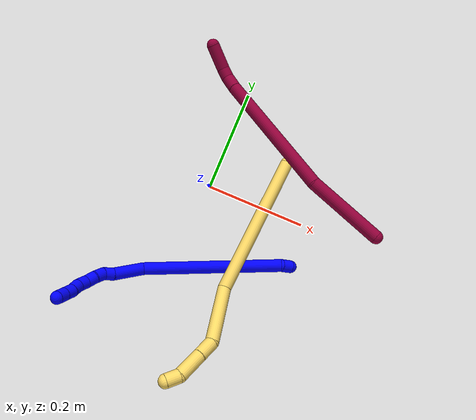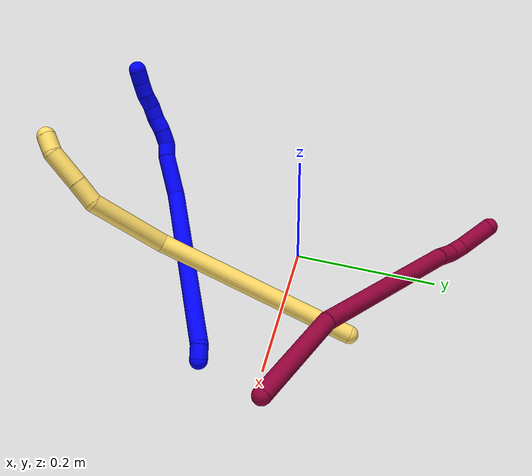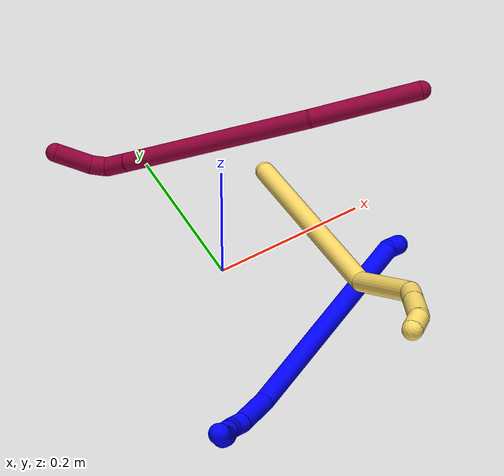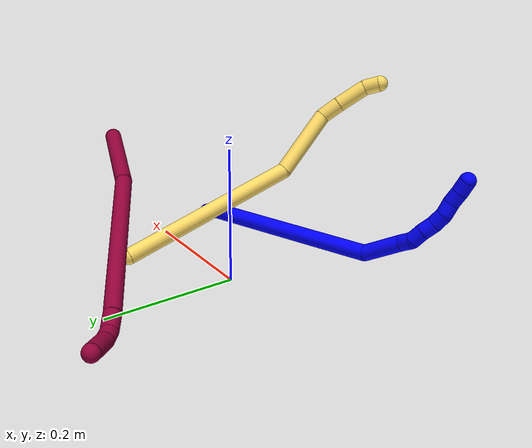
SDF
<sdf version="1.7">
 <world name="default">
  <model name="photoneo_s_sensor">
   <static>1</static>
   <pose>0 0 2 1.57079 1.57079 3.14159</pose>
   <link name="link">
    <inertial><mass>0.1</mass></inertial>
    <sensor name="sensor" type="depth">
     <update_rate>30</update_rate>
     <camera>
      <horizontal_fov>1.22</horizontal_fov>
      <image><width>1920</width><height>1200</height><format>B8G8R8</format></image>
      <clip><near>0.1</near><far>2</far></clip>
      <depth_camera><output>points</output></depth_camera>
     </camera>
     <plugin name="camera_plugin" filename="libgazebo_ros_depth_camera.so">
      <baseline>0.2</baseline>
      <alwaysOn>1</alwaysOn>
      <updateRate>0.0</updateRate>
      <cameraName>camera_ir</cameraName>
      <imageTopicName>/camera/color/image_raw</imageTopicName>
      <cameraInfoTopicName>/camera/color/camera_info</cameraInfoTopicName>
      <depthImageTopicName>/camera/depth/image_raw</depthImageTopicName>
      <depthImageCameraInfoTopicName>/camera/depth/camera_info</depthImageCameraInfoTopicName>
      <pointCloudTopicName>/camera/depth/points</pointCloudTopicName>
      <frameName>fr_optical</frameName>
      <pointCloudCutoff>0.1</pointCloudCutoff>
      <pointCloudCutoffMax>2.0</pointCloudCutoffMax>
      <distortionK1>0</distortionK1>
      <distortionK2>0</distortionK2>
      <distortionK3>0</distortionK3>
      <distortionT1>0</distortionT1>
      <distortionT2>0</distortionT2>
      <CxPrime>0</CxPrime>
      <Cx>0</Cx>
      <Cy>0</Cy>
      <focalLength>0</focalLength>
      <hackBaseline>0</hackBaseline>
     </plugin>
    </sensor>
   </link>
  </model>
  <model name="bin">
   <static>1</static>
   <link name="bottom">
    <collision name="collision-bottom">
     <pose>0 0 -0.01 0 -0 0</pose>
     <geometry><box><size>0.8 0.6 0.02</size></box></geometry>
     <surface>
      <friction><ode><mu>100</mu><mu2>100</mu2></ode></friction>
      <contact><collide_bitmask>65535</collide_bitmask></contact>
     </surface>
    </collision>
   </link>
   <link name="west_wall">
    <collision name="collision-west_wall">
     <pose>-0.41 0 0.1 0 -0 0</pose>
     <geometry><box><size>0.02 0.6 0.2</size></box></geometry>
     <surface>
      <friction><ode><mu>100</mu><mu2>100</mu2></ode></friction>
      <contact><collide_bitmask>65535</collide_bitmask></contact>
     </surface>
    </collision>
   </link>
   <link name="east_wall">
    <collision name="collision-east_wall">
     <pose>0.41 0 0.1 0 -0 0</pose>
     <geometry><box><size>0.02 0.6 0.2</size></box></geometry>
     <surface>
      <friction><ode><mu>100</mu><mu2>100</mu2></ode></friction>
      <contact><collide_bitmask>65535</collide_bitmask></contact>
     </surface>
    </collision>
   </link>
   <link name="south_wall">
    <collision name="collision-south_wall">
     <pose>0 -0.31 0.1 0 -0 0</pose>
     <geometry><box><size>0.8 0.02 0.2</size></box></geometry>
     <surface>
      <friction><ode><mu>100</mu><mu2>100</mu2></ode></friction>
      <contact><collide_bitmask>65535</collide_bitmask></contact>
     </surface>
    </collision>
   </link>
   <link name="north_wall">
    <collision name="collision-north_wall">
     <pose>0 0.31 0.1 0 -0 0</pose>
     <geometry><box><size>0.8 0.02 0.2</size></box></geometry>
     <surface>
      <friction><ode><mu>100</mu><mu2>100</mu2></ode></friction>
      <contact><collide_bitmask>65535</collide_bitmask></contact>
     </surface>
    </collision>
   </link>
  </model>
  <model name="1">
   <static>0</static>
   <link name="1">
    <collision name="collision-cylinder-e_1_1_4">
     <pose>-0.008423 -0.00355 -0.004879 2.51263 -0.949167 -2.01272</pose>
     <geometry><cylinder><radius>0.0125</radius><length>0.020721</length></cylinder></geometry>
     <surface>
      <friction><ode><mu>1.16</mu><mu2>1.16</mu2><slip1>0</slip1><slip2>0</slip2></ode></friction>
      <contact><ode><kp>1e+06</kp><kd>1</kd><max_vel>0</max_vel><min_depth>0.001</min_depth></ode></contact>
     </surface>
    </collision>
    <visual name="visual-cylinder-e_1_1_4">
     <pose>-0.008423 -0.00355 -0.004879 2.51263 -0.949167 -2.01272</pose>
     <geometry><cylinder><radius>0.0125</radius><length>0.020721</length></cylinder></geometry>
     <material><ambient>0 0 1 1</ambient></material>
    </visual>
    <collision name="collision-cylinder-e_2_4_5">
     <pose>-0.146684 -0.052605 -0.011258 1.60374 -1.23353 -1.26479</pose>
     <geometry><cylinder><radius>0.0125</radius><length>0.275181</length></cylinder></geometry>
     <surface>
      <friction><ode><mu>1.16</mu><mu2>1.16</mu2><slip1>0</slip1><slip2>0</slip2></ode></friction>
      <contact><ode><kp>1e+06</kp><kd>1</kd><max_vel>0</max_vel><min_depth>0.001</min_depth></ode></contact>
     </surface>
    </collision>
    <visual name="visual-cylinder-e_2_4_5">
     <pose>-0.146684 -0.052605 -0.011258 1.60374 -1.23353 -1.26479</pose>
     <geometry><cylinder><radius>0.0125</radius><length>0.275181</length></cylinder></geometry>
     <material><ambient>0 0 1 1</ambient></material>
    </visual>
    <collision name="collision-cylinder-e_3_5_6">
     <pose>-0.304304 -0.10016 -0.026616 2.99471 -1.10373 -2.90372</pose>
     <geometry><cylinder><radius>0.0125</radius><length>0.062227</length></cylinder></geometry>
     <surface>
      <friction><ode><mu>1.16</mu><mu2>1.16</mu2><slip1>0</slip1><slip2>0</slip2></ode></friction>
      <contact><ode><kp>1e+06</kp><kd>1</kd><max_vel>0</max_vel><min_depth>0.001</min_depth></ode></contact>
     </surface>
    </collision>
    <visual name="visual-cylinder-e_3_5_6">
     <pose>-0.304304 -0.10016 -0.026616 2.99471 -1.10373 -2.90372</pose>
     <geometry><cylinder><radius>0.0125</radius><length>0.062227</length></cylinder></geometry>
     <material><ambient>0 0 1 1</ambient></material>
    </visual>
    <collision name="collision-cylinder-e_4_6_7">
     <pose>-0.340377 -0.104793 -0.045662 2.67966 -0.96079 -2.29378</pose>
     <geometry><cylinder><radius>0.0125</radius><length>0.020231</length></cylinder></geometry>
     <surface>
      <friction><ode><mu>1.16</mu><mu2>1.16</mu2><slip1>0</slip1><slip2>0</slip2></ode></friction>
      <contact><ode><kp>1e+06</kp><kd>1</kd><max_vel>0</max_vel><min_depth>0.001</min_depth></ode></contact>
     </surface>
    </collision>
    <visual name="visual-cylinder-e_4_6_7">
     <pose>-0.340377 -0.104793 -0.045662 2.67966 -0.96079 -2.29378</pose>
     <geometry><cylinder><radius>0.0125</radius><length>0.020231</length></cylinder></geometry>
     <material><ambient>0 0 1 1</ambient></material>
    </visual>
    <collision name="collision-cylinder-e_5_7_8">
     <pose>-0.35622 -0.105274 -0.058106 -2.8596 -0.785236 2.48119</pose>
     <geometry><cylinder><radius>0.0125</radius><length>0.021365</length></cylinder></geometry>
     <surface>
      <friction><ode><mu>1.16</mu><mu2>1.16</mu2><slip1>0</slip1><slip2>0</slip2></ode></friction>
      <contact><ode><kp>1e+06</kp><kd>1</kd><max_vel>0</max_vel><min_depth>0.001</min_depth></ode></contact>
     </surface>
    </collision>
    <visual name="visual-cylinder-e_5_7_8">
     <pose>-0.35622 -0.105274 -0.058106 -2.8596 -0.785236 2.48119</pose>
     <geometry><cylinder><radius>0.0125</radius><length>0.021365</length></cylinder></geometry>
     <material><ambient>0 0 1 1</ambient></material>
    </visual>
    <collision name="collision-cylinder-e_6_8_9">
     <pose>-0.371842 -0.100452 -0.070789 -2.67704 -0.925858 2.25642</pose>
     <geometry><cylinder><radius>0.0125</radius><length>0.020195</length></cylinder></geometry>
     <surface>
      <friction><ode><mu>1.16</mu><mu2>1.16</mu2><slip1>0</slip1><slip2>0</slip2></ode></friction>
      <contact><ode><kp>1e+06</kp><kd>1</kd><max_vel>0</max_vel><min_depth>0.001</min_depth></ode></contact>
     </surface>
    </collision>
    <visual name="visual-cylinder-e_6_8_9">
     <pose>-0.371842 -0.100452 -0.070789 -2.67704 -0.925858 2.25642</pose>
     <geometry><cylinder><radius>0.0125</radius><length>0.020195</length></cylinder></geometry>
     <material><ambient>0 0 1 1</ambient></material>
    </visual>
    <collision name="collision-cylinder-e_7_9_10">
     <pose>-0.386521 -0.095423 -0.083394 -2.83039 -0.719735 2.35156</pose>
     <geometry><cylinder><radius>0.0125</radius><length>0.020054</length></cylinder></geometry>
     <surface>
      <friction><ode><mu>1.16</mu><mu2>1.16</mu2><slip1>0</slip1><slip2>0</slip2></ode></friction>
      <contact><ode><kp>1e+06</kp><kd>1</kd><max_vel>0</max_vel><min_depth>0.001</min_depth></ode></contact>
     </surface>
    </collision>
    <visual name="visual-cylinder-e_7_9_10">
     <pose>-0.386521 -0.095423 -0.083394 -2.83039 -0.719735 2.35156</pose>
     <geometry><cylinder><radius>0.0125</radius><length>0.020054</length></cylinder></geometry>
     <material><ambient>0 0 1 1</ambient></material>
    </visual>
    <collision name="collision-cylinder-e_8_10_11">
     <pose>-0.397847 -0.088626 -0.098177 -2.60836 -0.490594 1.48382</pose>
     <geometry><cylinder><radius>0.0125</radius><length>0.020022</length></cylinder></geometry>
     <surface>
      <friction><ode><mu>1.16</mu><mu2>1.16</mu2><slip1>0</slip1><slip2>0</slip2></ode></friction>
      <contact><ode><kp>1e+06</kp><kd>1</kd><max_vel>0</max_vel><min_depth>0.001</min_depth></ode></contact>
     </surface>
    </collision>
    <visual name="visual-cylinder-e_8_10_11">
     <pose>-0.397847 -0.088626 -0.098177 -2.60836 -0.490594 1.48382</pose>
     <geometry><cylinder><radius>0.0125</radius><length>0.020022</length></cylinder></geometry>
     <material><ambient>0 0 1 1</ambient></material>
    </visual>
    <collision name="collision-cylinder-e_9_11_12">
     <pose>-0.40827 -0.081605 -0.113594 -2.82816 -0.607254 2.20739</pose>
     <geometry><cylinder><radius>0.0125</radius><length>0.020001</length></cylinder></geometry>
     <surface>
      <friction><ode><mu>1.16</mu><mu2>1.16</mu2><slip1>0</slip1><slip2>0</slip2></ode></friction>
      <contact><ode><kp>1e+06</kp><kd>1</kd><max_vel>0</max_vel><min_depth>0.001</min_depth></ode></contact>
     </surface>
    </collision>
    <visual name="visual-cylinder-e_9_11_12">
     <pose>-0.40827 -0.081605 -0.113594 -2.82816 -0.607254 2.20739</pose>
     <geometry><cylinder><radius>0.0125</radius><length>0.020001</length></cylinder></geometry>
     <material><ambient>0 0 1 1</ambient></material>
    </visual>
    <collision name="collision-cylinder-e_10_12_2">
     <pose>-0.418989 -0.076476 -0.129661 -2.83677 -0.524984 2.10295</pose>
     <geometry><cylinder><radius>0.0125</radius><length>0.020002</length></cylinder></geometry>
     <surface>
      <friction><ode><mu>1.16</mu><mu2>1.16</mu2><slip1>0</slip1><slip2>0</slip2></ode></friction>
      <contact><ode><kp>1e+06</kp><kd>1</kd><max_vel>0</max_vel><min_depth>0.001</min_depth></ode></contact>
     </surface>
    </collision>
    <visual name="visual-cylinder-e_10_12_2">
     <pose>-0.418989 -0.076476 -0.129661 -2.83677 -0.524984 2.10295</pose>
     <geometry><cylinder><radius>0.0125</radius><length>0.020002</length></cylinder></geometry>
     <material><ambient>0 0 1 1</ambient></material>
    </visual>
    <collision name="collision-sphere-2">
     <pose>-0.424002 -0.073878 -0.137917 0 -0 0</pose>
     <geometry><sphere><radius>0.0125</radius></sphere></geometry>
     <surface>
      <friction><ode><mu>1.16</mu><mu2>1.16</mu2><slip1>0</slip1><slip2>0</slip2></ode></friction>
      <contact><ode><kp>1e+06</kp><kd>1</kd><max_vel>0</max_vel><min_depth>0.001</min_depth></ode></contact>
     </surface>
    </collision>
    <visual name="visual-sphere-2">
     <pose>-0.424002 -0.073878 -0.137917 0 -0 0</pose>
     <geometry><sphere><radius>0.0125</radius></sphere></geometry>
     <material><ambient>0 0 1 1</ambient></material>
    </visual>
    <collision name="collision-sphere-12">
     <pose>-0.413977 -0.079073 -0.121406 0 -0 0</pose>
     <geometry><sphere><radius>0.0125</radius></sphere></geometry>
     <surface>
      <friction><ode><mu>1.16</mu><mu2>1.16</mu2><slip1>0</slip1><slip2>0</slip2></ode></friction>
      <contact><ode><kp>1e+06</kp><kd>1</kd><max_vel>0</max_vel><min_depth>0.001</min_depth></ode></contact>
     </surface>
    </collision>
    <visual name="visual-sphere-12">
     <pose>-0.413977 -0.079073 -0.121406 0 -0 0</pose>
     <geometry><sphere><radius>0.0125</radius></sphere></geometry>
     <material><ambient>0 0 1 1</ambient></material>
    </visual>
    <collision name="collision-sphere-11">
     <pose>-0.402564 -0.084137 -0.105781 0 -0 0</pose>
     <geometry><sphere><radius>0.0125</radius></sphere></geometry>
     <surface>
      <friction><ode><mu>1.16</mu><mu2>1.16</mu2><slip1>0</slip1><slip2>0</slip2></ode></friction>
      <contact><ode><kp>1e+06</kp><kd>1</kd><max_vel>0</max_vel><min_depth>0.001</min_depth></ode></contact>
     </surface>
    </collision>
    <visual name="visual-sphere-11">
     <pose>-0.402564 -0.084137 -0.105781 0 -0 0</pose>
     <geometry><sphere><radius>0.0125</radius></sphere></geometry>
     <material><ambient>0 0 1 1</ambient></material>
    </visual>
    <collision name="collision-sphere-10">
     <pose>-0.393131 -0.093114 -0.090572 0 -0 0</pose>
     <geometry><sphere><radius>0.0125</radius></sphere></geometry>
     <surface>
      <friction><ode><mu>1.16</mu><mu2>1.16</mu2><slip1>0</slip1><slip2>0</slip2></ode></friction>
      <contact><ode><kp>1e+06</kp><kd>1</kd><max_vel>0</max_vel><min_depth>0.001</min_depth></ode></contact>
     </surface>
    </collision>
    <visual name="visual-sphere-10">
     <pose>-0.393131 -0.093114 -0.090572 0 -0 0</pose>
     <geometry><sphere><radius>0.0125</radius></sphere></geometry>
     <material><ambient>0 0 1 1</ambient></material>
    </visual>
    <collision name="collision-sphere-9">
     <pose>-0.379911 -0.097732 -0.076216 0 -0 0</pose>
     <geometry><sphere><radius>0.0125</radius></sphere></geometry>
     <surface>
      <friction><ode><mu>1.16</mu><mu2>1.16</mu2><slip1>0</slip1><slip2>0</slip2></ode></friction>
      <contact><ode><kp>1e+06</kp><kd>1</kd><max_vel>0</max_vel><min_depth>0.001</min_depth></ode></contact>
     </surface>
    </collision>
    <visual name="visual-sphere-9">
     <pose>-0.379911 -0.097732 -0.076216 0 -0 0</pose>
     <geometry><sphere><radius>0.0125</radius></sphere></geometry>
     <material><ambient>0 0 1 1</ambient></material>
    </visual>
    <collision name="collision-sphere-4">
     <pose>-0.016845 -0.007099 -0.009758 0 -0 0</pose>
     <geometry><sphere><radius>0.0125</radius></sphere></geometry>
     <surface>
      <friction><ode><mu>1.16</mu><mu2>1.16</mu2><slip1>0</slip1><slip2>0</slip2></ode></friction>
      <contact><ode><kp>1e+06</kp><kd>1</kd><max_vel>0</max_vel><min_depth>0.001</min_depth></ode></contact>
     </surface>
    </collision>
    <visual name="visual-sphere-4">
     <pose>-0.016845 -0.007099 -0.009758 0 -0 0</pose>
     <geometry><sphere><radius>0.0125</radius></sphere></geometry>
     <material><ambient>0 0 1 1</ambient></material>
    </visual>
    <collision name="collision-sphere-1">
     <geometry><sphere><radius>0.0125</radius></sphere></geometry>
     <surface>
      <friction><ode><mu>1.16</mu><mu2>1.16</mu2><slip1>0</slip1><slip2>0</slip2></ode></friction>
      <contact><ode><kp>1e+06</kp><kd>1</kd><max_vel>0</max_vel><min_depth>0.001</min_depth></ode></contact>
     </surface>
    </collision>
    <visual name="visual-sphere-1">
     <geometry><sphere><radius>0.0125</radius></sphere></geometry>
     <material><ambient>0 0 1 1</ambient></material>
    </visual>
    <collision name="collision-sphere-8">
     <pose>-0.363772 -0.103171 -0.065363 0 -0 0</pose>
     <geometry><sphere><radius>0.0125</radius></sphere></geometry>
     <surface>
      <friction><ode><mu>1.16</mu><mu2>1.16</mu2><slip1>0</slip1><slip2>0</slip2></ode></friction>
      <contact><ode><kp>1e+06</kp><kd>1</kd><max_vel>0</max_vel><min_depth>0.001</min_depth></ode></contact>
     </surface>
    </collision>
    <visual name="visual-sphere-8">
     <pose>-0.363772 -0.103171 -0.065363 0 -0 0</pose>
     <geometry><sphere><radius>0.0125</radius></sphere></geometry>
     <material><ambient>0 0 1 1</ambient></material>
    </visual>
    <collision name="collision-sphere-5">
     <pose>-0.276523 -0.09811 -0.012758 0 -0 0</pose>
     <geometry><sphere><radius>0.0125</radius></sphere></geometry>
     <surface>
      <friction><ode><mu>1.16</mu><mu2>1.16</mu2><slip1>0</slip1><slip2>0</slip2></ode></friction>
      <contact><ode><kp>1e+06</kp><kd>1</kd><max_vel>0</max_vel><min_depth>0.001</min_depth></ode></contact>
     </surface>
    </collision>
    <visual name="visual-sphere-5">
     <pose>-0.276523 -0.09811 -0.012758 0 -0 0</pose>
     <geometry><sphere><radius>0.0125</radius></sphere></geometry>
     <material><ambient>0 0 1 1</ambient></material>
    </visual>
    <collision name="collision-sphere-6">
     <pose>-0.332086 -0.102211 -0.040475 0 -0 0</pose>
     <geometry><sphere><radius>0.0125</radius></sphere></geometry>
     <surface>
      <friction><ode><mu>1.16</mu><mu2>1.16</mu2><slip1>0</slip1><slip2>0</slip2></ode></friction>
      <contact><ode><kp>1e+06</kp><kd>1</kd><max_vel>0</max_vel><min_depth>0.001</min_depth></ode></contact>
     </surface>
    </collision>
    <visual name="visual-sphere-6">
     <pose>-0.332086 -0.102211 -0.040475 0 -0 0</pose>
     <geometry><sphere><radius>0.0125</radius></sphere></geometry>
     <material><ambient>0 0 1 1</ambient></material>
    </visual>
    <collision name="collision-sphere-7">
     <pose>-0.348667 -0.107376 -0.05085 0 -0 0</pose>
     <geometry><sphere><radius>0.0125</radius></sphere></geometry>
     <surface>
      <friction><ode><mu>1.16</mu><mu2>1.16</mu2><slip1>0</slip1><slip2>0</slip2></ode></friction>
      <contact><ode><kp>1e+06</kp><kd>1</kd><max_vel>0</max_vel><min_depth>0.001</min_depth></ode></contact>
     </surface>
    </collision>
    <visual name="visual-sphere-7">
     <pose>-0.348667 -0.107376 -0.05085 0 -0 0</pose>
     <geometry><sphere><radius>0.0125</radius></sphere></geometry>
     <material><ambient>0 0 1 1</ambient></material>
    </visual>
    <inertial>
     <pose>-0.22749 -0.06806 -0.033907 0 -0 0</pose>
     <mass>0.5</mass>
     <inertia>
      <ixx>-0.000423</ixx>
      <ixy>0</ixy>
      <ixz>0</ixz>
      <iyy>0.001029</iyy>
      <iyz>0</iyz>
      <izz>0.002244</izz>
     </inertia>
    </inertial>
   </link>
   <pose>0.210829 -0.084868 0.011496 2.84462 0.05961 0.751478</pose>
  </model>
  <model name="5">
   <static>0</static>
   <link name="5">
    <collision name="collision-cylinder-e_1_1_4">
     <pose>-0.009736 -0.117379 0.076397 0.993819 -0.069403 -0.037648</pose>
     <geometry><cylinder><radius>0.0125</radius><length>0.280778</length></cylinder></geometry>
     <surface>
      <friction><ode><mu>1.16</mu><mu2>1.16</mu2><slip1>0</slip1><slip2>0</slip2></ode></friction>
      <contact><ode><kp>1e+06</kp><kd>1</kd><max_vel>0</max_vel><min_depth>0.001</min_depth></ode></contact>
     </surface>
    </collision>
    <visual name="visual-cylinder-e_1_1_4">
     <pose>-0.009736 -0.117379 0.076397 0.993819 -0.069403 -0.037648</pose>
     <geometry><cylinder><radius>0.0125</radius><length>0.280778</length></cylinder></geometry>
     <material><ambient>1 0.858824 0.4 1</ambient></material>
    </visual>
    <collision name="collision-cylinder-e_2_4_5">
     <pose>-0.023133 -0.264281 0.200013 0.558765 -0.065654 -0.018841</pose>
     <geometry><cylinder><radius>0.0125</radius><length>0.111619</length></cylinder></geometry>
     <surface>
      <friction><ode><mu>1.16</mu><mu2>1.16</mu2><slip1>0</slip1><slip2>0</slip2></ode></friction>
      <contact><ode><kp>1e+06</kp><kd>1</kd><max_vel>0</max_vel><min_depth>0.001</min_depth></ode></contact>
     </surface>
    </collision>
    <visual name="visual-cylinder-e_2_4_5">
     <pose>-0.023133 -0.264281 0.200013 0.558765 -0.065654 -0.018841</pose>
     <geometry><cylinder><radius>0.0125</radius><length>0.111619</length></cylinder></geometry>
     <material><ambient>1 0.858824 0.4 1</ambient></material>
    </visual>
    <collision name="collision-cylinder-e_3_5_6">
     <pose>-0.034561 -0.304332 0.257174 0.814063 -0.492333 -0.2158</pose>
     <geometry><cylinder><radius>0.0125</radius><length>0.032863</length></cylinder></geometry>
     <surface>
      <friction><ode><mu>1.16</mu><mu2>1.16</mu2><slip1>0</slip1><slip2>0</slip2></ode></friction>
      <contact><ode><kp>1e+06</kp><kd>1</kd><max_vel>0</max_vel><min_depth>0.001</min_depth></ode></contact>
     </surface>
    </collision>
    <visual name="visual-cylinder-e_3_5_6">
     <pose>-0.034561 -0.304332 0.257174 0.814063 -0.492333 -0.2158</pose>
     <geometry><cylinder><radius>0.0125</radius><length>0.032863</length></cylinder></geometry>
     <material><ambient>1 0.858824 0.4 1</ambient></material>
    </visual>
    <collision name="collision-cylinder-e_4_6_7">
     <pose>-0.053605 -0.33149 0.281281 0.865231 -0.476541 -0.22339</pose>
     <geometry><cylinder><radius>0.0125</radius><length>0.049168</length></cylinder></geometry>
     <surface>
      <friction><ode><mu>1.16</mu><mu2>1.16</mu2><slip1>0</slip1><slip2>0</slip2></ode></friction>
      <contact><ode><kp>1e+06</kp><kd>1</kd><max_vel>0</max_vel><min_depth>0.001</min_depth></ode></contact>
     </surface>
    </collision>
    <visual name="visual-cylinder-e_4_6_7">
     <pose>-0.053605 -0.33149 0.281281 0.865231 -0.476541 -0.22339</pose>
     <geometry><cylinder><radius>0.0125</radius><length>0.049168</length></cylinder></geometry>
     <material><ambient>1 0.858824 0.4 1</ambient></material>
    </visual>
    <collision name="collision-cylinder-e_5_7_2">
     <pose>-0.074055 -0.356591 0.298192 1.25741 -0.800213 -0.596681</pose>
     <geometry><cylinder><radius>0.0125</radius><length>0.025572</length></cylinder></geometry>
     <surface>
      <friction><ode><mu>1.16</mu><mu2>1.16</mu2><slip1>0</slip1><slip2>0</slip2></ode></friction>
      <contact><ode><kp>1e+06</kp><kd>1</kd><max_vel>0</max_vel><min_depth>0.001</min_depth></ode></contact>
     </surface>
    </collision>
    <visual name="visual-cylinder-e_5_7_2">
     <pose>-0.074055 -0.356591 0.298192 1.25741 -0.800213 -0.596681</pose>
     <geometry><cylinder><radius>0.0125</radius><length>0.025572</length></cylinder></geometry>
     <material><ambient>1 0.858824 0.4 1</ambient></material>
    </visual>
    <collision name="collision-sphere-2">
     <pose>-0.08323 -0.365064 0.300938 0 -0 0</pose>
     <geometry><sphere><radius>0.0125</radius></sphere></geometry>
     <surface>
      <friction><ode><mu>1.16</mu><mu2>1.16</mu2><slip1>0</slip1><slip2>0</slip2></ode></friction>
      <contact><ode><kp>1e+06</kp><kd>1</kd><max_vel>0</max_vel><min_depth>0.001</min_depth></ode></contact>
     </surface>
    </collision>
    <visual name="visual-sphere-2">
     <pose>-0.08323 -0.365064 0.300938 0 -0 0</pose>
     <geometry><sphere><radius>0.0125</radius></sphere></geometry>
     <material><ambient>1 0.858824 0.4 1</ambient></material>
    </visual>
    <collision name="collision-sphere-7">
     <pose>-0.064881 -0.348119 0.295446 0 -0 0</pose>
     <geometry><sphere><radius>0.0125</radius></sphere></geometry>
     <surface>
      <friction><ode><mu>1.16</mu><mu2>1.16</mu2><slip1>0</slip1><slip2>0</slip2></ode></friction>
      <contact><ode><kp>1e+06</kp><kd>1</kd><max_vel>0</max_vel><min_depth>0.001</min_depth></ode></contact>
     </surface>
    </collision>
    <visual name="visual-sphere-7">
     <pose>-0.064881 -0.348119 0.295446 0 -0 0</pose>
     <geometry><sphere><radius>0.0125</radius></sphere></geometry>
     <material><ambient>1 0.858824 0.4 1</ambient></material>
    </visual>
    <collision name="collision-sphere-6">
     <pose>-0.042328 -0.31486 0.267115 0 -0 0</pose>
     <geometry><sphere><radius>0.0125</radius></sphere></geometry>
     <surface>
      <friction><ode><mu>1.16</mu><mu2>1.16</mu2><slip1>0</slip1><slip2>0</slip2></ode></friction>
      <contact><ode><kp>1e+06</kp><kd>1</kd><max_vel>0</max_vel><min_depth>0.001</min_depth></ode></contact>
     </surface>
    </collision>
    <visual name="visual-sphere-6">
     <pose>-0.042328 -0.31486 0.267115 0 -0 0</pose>
     <geometry><sphere><radius>0.0125</radius></sphere></geometry>
     <material><ambient>1 0.858824 0.4 1</ambient></material>
    </visual>
    <collision name="collision-sphere-5">
     <pose>-0.026794 -0.293804 0.247233 0 -0 0</pose>
     <geometry><sphere><radius>0.0125</radius></sphere></geometry>
     <surface>
      <friction><ode><mu>1.16</mu><mu2>1.16</mu2><slip1>0</slip1><slip2>0</slip2></ode></friction>
      <contact><ode><kp>1e+06</kp><kd>1</kd><max_vel>0</max_vel><min_depth>0.001</min_depth></ode></contact>
     </surface>
    </collision>
    <visual name="visual-sphere-5">
     <pose>-0.026794 -0.293804 0.247233 0 -0 0</pose>
     <geometry><sphere><radius>0.0125</radius></sphere></geometry>
     <material><ambient>1 0.858824 0.4 1</ambient></material>
    </visual>
    <collision name="collision-sphere-1">
     <geometry><sphere><radius>0.0125</radius></sphere></geometry>
     <surface>
      <friction><ode><mu>1.16</mu><mu2>1.16</mu2><slip1>0</slip1><slip2>0</slip2></ode></friction>
      <contact><ode><kp>1e+06</kp><kd>1</kd><max_vel>0</max_vel><min_depth>0.001</min_depth></ode></contact>
     </surface>
    </collision>
    <visual name="visual-sphere-1">
     <geometry><sphere><radius>0.0125</radius></sphere></geometry>
     <material><ambient>1 0.858824 0.4 1</ambient></material>
    </visual>
    <collision name="collision-sphere-4">
     <pose>-0.019471 -0.234758 0.152794 0 -0 0</pose>
     <geometry><sphere><radius>0.0125</radius></sphere></geometry>
     <surface>
      <friction><ode><mu>1.16</mu><mu2>1.16</mu2><slip1>0</slip1><slip2>0</slip2></ode></friction>
      <contact><ode><kp>1e+06</kp><kd>1</kd><max_vel>0</max_vel><min_depth>0.001</min_depth></ode></contact>
     </surface>
    </collision>
    <visual name="visual-sphere-4">
     <pose>-0.019471 -0.234758 0.152794 0 -0 0</pose>
     <geometry><sphere><radius>0.0125</radius></sphere></geometry>
     <material><ambient>1 0.858824 0.4 1</ambient></material>
    </visual>
    <inertial>
     <pose>-0.021961 -0.19575 0.147365 0 -0 0</pose>
     <mass>0.5</mass>
     <inertia>
      <ixx>0.001903</ixx>
      <ixy>0</ixy>
      <ixz>0</ixz>
      <iyy>0.001026</iyy>
      <iyz>0</iyz>
      <izz>0.001797</izz>
     </inertia>
    </inertial>
   </link>
   <pose>0.123466 0.101515 0.015055 0.257058 0.425362 -0.156918</pose>
  </model>
  <model name="8">
   <static>0</static>
   <link name="8">
    <collision name="collision-cylinder-e_1_1_4">
     <pose>-0.015723 0.014132 0.070323 -0.19832 -0.215786 0.021551</pose>
     <geometry><cylinder><radius>0.0125</radius><length>0.146863</length></cylinder></geometry>
     <surface>
      <friction><ode><mu>1.16</mu><mu2>1.16</mu2><slip1>0</slip1><slip2>0</slip2></ode></friction>
      <contact><ode><kp>1e+06</kp><kd>1</kd><max_vel>0</max_vel><min_depth>0.001</min_depth></ode></contact>
     </surface>
    </collision>
    <visual name="visual-cylinder-e_1_1_4">
     <pose>-0.015723 0.014132 0.070323 -0.19832 -0.215786 0.021551</pose>
     <geometry><cylinder><radius>0.0125</radius><length>0.146863</length></cylinder></geometry>
     <material><ambient>0.584314 0 0.227451 1</ambient></material>
    </visual>
    <collision name="collision-cylinder-e_2_4_5">
     <pose>-0.09021 0.047299 0.251642 -0.169836 -0.480942 0.041741</pose>
     <geometry><cylinder><radius>0.0125</radius><length>0.254054</length></cylinder></geometry>
     <surface>
      <friction><ode><mu>1.16</mu><mu2>1.16</mu2><slip1>0</slip1><slip2>0</slip2></ode></friction>
      <contact><ode><kp>1e+06</kp><kd>1</kd><max_vel>0</max_vel><min_depth>0.001</min_depth></ode></contact>
     </surface>
    </collision>
    <visual name="visual-cylinder-e_2_4_5">
     <pose>-0.09021 0.047299 0.251642 -0.169836 -0.480942 0.041741</pose>
     <geometry><cylinder><radius>0.0125</radius><length>0.254054</length></cylinder></geometry>
     <material><ambient>0.584314 0 0.227451 1</ambient></material>
    </visual>
    <collision name="collision-cylinder-e_3_5_6">
     <pose>-0.156928 0.068127 0.374168 -0.154287 -0.598297 0.047668</pose>
     <geometry><cylinder><radius>0.0125</radius><length>0.028243</length></cylinder></geometry>
     <surface>
      <friction><ode><mu>1.16</mu><mu2>1.16</mu2><slip1>0</slip1><slip2>0</slip2></ode></friction>
      <contact><ode><kp>1e+06</kp><kd>1</kd><max_vel>0</max_vel><min_depth>0.001</min_depth></ode></contact>
     </surface>
    </collision>
    <visual name="visual-cylinder-e_3_5_6">
     <pose>-0.156928 0.068127 0.374168 -0.154287 -0.598297 0.047668</pose>
     <geometry><cylinder><radius>0.0125</radius><length>0.028243</length></cylinder></geometry>
     <material><ambient>0.584314 0 0.227451 1</ambient></material>
    </visual>
    <collision name="collision-cylinder-e_4_6_7">
     <pose>-0.168738 0.075258 0.393898 -0.577107 -0.375388 0.112637</pose>
     <geometry><cylinder><radius>0.0125</radius><length>0.021034</length></cylinder></geometry>
     <surface>
      <friction><ode><mu>1.16</mu><mu2>1.16</mu2><slip1>0</slip1><slip2>0</slip2></ode></friction>
      <contact><ode><kp>1e+06</kp><kd>1</kd><max_vel>0</max_vel><min_depth>0.001</min_depth></ode></contact>
     </surface>
    </collision>
    <visual name="visual-cylinder-e_4_6_7">
     <pose>-0.168738 0.075258 0.393898 -0.577107 -0.375388 0.112637</pose>
     <geometry><cylinder><radius>0.0125</radius><length>0.021034</length></cylinder></geometry>
     <material><ambient>0.584314 0 0.227451 1</ambient></material>
    </visual>
    <collision name="collision-cylinder-e_5_7_2">
     <pose>-0.177231 0.098077 0.419218 -0.795785 -0.187293 0.078911</pose>
     <geometry><cylinder><radius>0.0125</radius><length>0.049807</length></cylinder></geometry>
     <surface>
      <friction><ode><mu>1.16</mu><mu2>1.16</mu2><slip1>0</slip1><slip2>0</slip2></ode></friction>
      <contact><ode><kp>1e+06</kp><kd>1</kd><max_vel>0</max_vel><min_depth>0.001</min_depth></ode></contact>
     </surface>
    </collision>
    <visual name="visual-cylinder-e_5_7_2">
     <pose>-0.177231 0.098077 0.419218 -0.795785 -0.187293 0.078911</pose>
     <geometry><cylinder><radius>0.0125</radius><length>0.049807</length></cylinder></geometry>
     <material><ambient>0.584314 0 0.227451 1</ambient></material>
    </visual>
    <collision name="collision-sphere-2">
     <pose>-0.181868 0.115557 0.436339 0 -0 0</pose>
     <geometry><sphere><radius>0.0125</radius></sphere></geometry>
     <surface>
      <friction><ode><mu>1.16</mu><mu2>1.16</mu2><slip1>0</slip1><slip2>0</slip2></ode></friction>
      <contact><ode><kp>1e+06</kp><kd>1</kd><max_vel>0</max_vel><min_depth>0.001</min_depth></ode></contact>
     </surface>
    </collision>
    <visual name="visual-sphere-2">
     <pose>-0.181868 0.115557 0.436339 0 -0 0</pose>
     <geometry><sphere><radius>0.0125</radius></sphere></geometry>
     <material><ambient>0.584314 0 0.227451 1</ambient></material>
    </visual>
    <collision name="collision-sphere-7">
     <pose>-0.172594 0.080597 0.402098 0 -0 0</pose>
     <geometry><sphere><radius>0.0125</radius></sphere></geometry>
     <surface>
      <friction><ode><mu>1.16</mu><mu2>1.16</mu2><slip1>0</slip1><slip2>0</slip2></ode></friction>
      <contact><ode><kp>1e+06</kp><kd>1</kd><max_vel>0</max_vel><min_depth>0.001</min_depth></ode></contact>
     </surface>
    </collision>
    <visual name="visual-sphere-7">
     <pose>-0.172594 0.080597 0.402098 0 -0 0</pose>
     <geometry><sphere><radius>0.0125</radius></sphere></geometry>
     <material><ambient>0.584314 0 0.227451 1</ambient></material>
    </visual>
    <collision name="collision-sphere-6">
     <pose>-0.164882 0.06992 0.385698 0 -0 0</pose>
     <geometry><sphere><radius>0.0125</radius></sphere></geometry>
     <surface>
      <friction><ode><mu>1.16</mu><mu2>1.16</mu2><slip1>0</slip1><slip2>0</slip2></ode></friction>
      <contact><ode><kp>1e+06</kp><kd>1</kd><max_vel>0</max_vel><min_depth>0.001</min_depth></ode></contact>
     </surface>
    </collision>
    <visual name="visual-sphere-6">
     <pose>-0.164882 0.06992 0.385698 0 -0 0</pose>
     <geometry><sphere><radius>0.0125</radius></sphere></geometry>
     <material><ambient>0.584314 0 0.227451 1</ambient></material>
    </visual>
    <collision name="collision-sphere-5">
     <pose>-0.148975 0.066333 0.362639 0 -0 0</pose>
     <geometry><sphere><radius>0.0125</radius></sphere></geometry>
     <surface>
      <friction><ode><mu>1.16</mu><mu2>1.16</mu2><slip1>0</slip1><slip2>0</slip2></ode></friction>
      <contact><ode><kp>1e+06</kp><kd>1</kd><max_vel>0</max_vel><min_depth>0.001</min_depth></ode></contact>
     </surface>
    </collision>
    <visual name="visual-sphere-5">
     <pose>-0.148975 0.066333 0.362639 0 -0 0</pose>
     <geometry><sphere><radius>0.0125</radius></sphere></geometry>
     <material><ambient>0.584314 0 0.227451 1</ambient></material>
    </visual>
    <collision name="collision-sphere-1">
     <geometry><sphere><radius>0.0125</radius></sphere></geometry>
     <surface>
      <friction><ode><mu>1.16</mu><mu2>1.16</mu2><slip1>0</slip1><slip2>0</slip2></ode></friction>
      <contact><ode><kp>1e+06</kp><kd>1</kd><max_vel>0</max_vel><min_depth>0.001</min_depth></ode></contact>
     </surface>
    </collision>
    <visual name="visual-sphere-1">
     <geometry><sphere><radius>0.0125</radius></sphere></geometry>
     <material><ambient>0.584314 0 0.227451 1</ambient></material>
    </visual>
    <collision name="collision-sphere-4">
     <pose>-0.031446 0.028264 0.140645 0 -0 0</pose>
     <geometry><sphere><radius>0.0125</radius></sphere></geometry>
     <surface>
      <friction><ode><mu>1.16</mu><mu2>1.16</mu2><slip1>0</slip1><slip2>0</slip2></ode></friction>
      <contact><ode><kp>1e+06</kp><kd>1</kd><max_vel>0</max_vel><min_depth>0.001</min_depth></ode></contact>
     </surface>
    </collision>
    <visual name="visual-sphere-4">
     <pose>-0.031446 0.028264 0.140645 0 -0 0</pose>
     <geometry><sphere><radius>0.0125</radius></sphere></geometry>
     <material><ambient>0.584314 0 0.227451 1</ambient></material>
    </visual>
    <inertial>
     <pose>-0.084072 0.044968 0.227982 0 -0 0</pose>
     <mass>0.5</mass>
     <inertia>
      <ixx>0.001542</ixx>
      <ixy>0</ixy>
      <ixz>0</ixz>
      <iyy>0.001704</iyy>
      <iyz>0</iyz>
      <izz>0.000465</izz>
     </inertia>
    </inertial>
   </link>
   <pose>0.312237 0.0311 0.137819 1.79212 -0.755512 -1.76663</pose>
  </model>
 </world>
</sdf>
